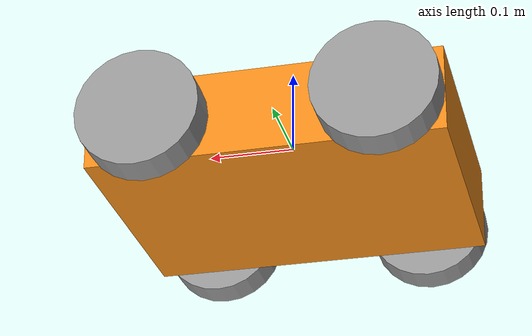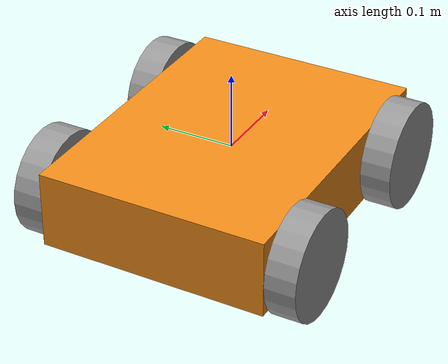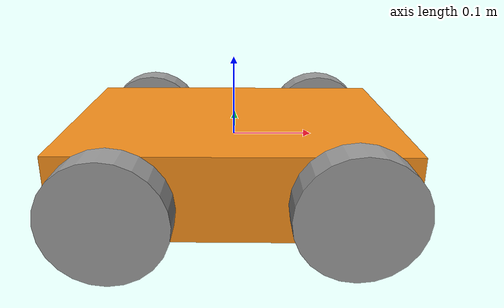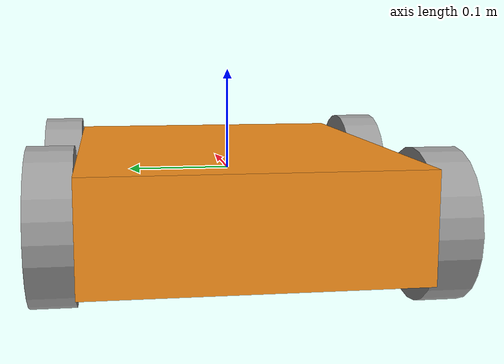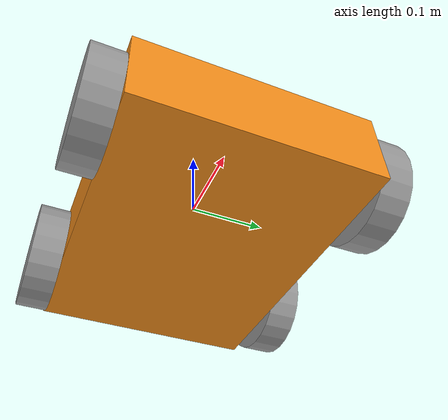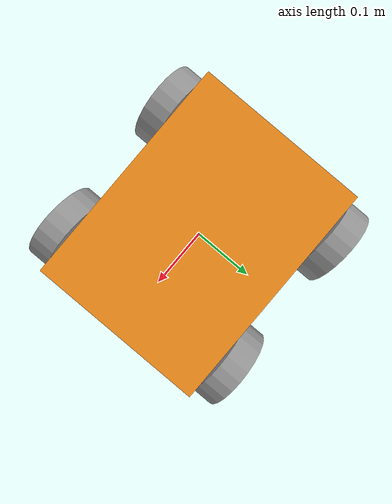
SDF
<?xml version='1.0'?>
<sdf version='1.7'>
  <model name='Robot'>
    <model name='Car'>
      <!-- Main platform -->
      <link name='main_platform'>
        <inertial>
          <mass>1</mass>
          <inertia>
            <ixx>0.166667</ixx>
            <ixy>0</ixy>
            <ixz>0</ixz>
            <iyy>0.166667</iyy>
            <iyz>0</iyz>
            <izz>0.166667</izz>
          </inertia>
          <pose>0 0 0 0 -0 0</pose>
        </inertial>
        <pose>0 0 -0.02597 0 -0 0</pose>
        <gravity>1</gravity>
        <self_collide>0</self_collide>
        <kinematic>0</kinematic>
        <enable_wind>0</enable_wind>
        <visual name='visual'>
          <pose>0 0 0 0 -0 0</pose>
          <geometry>
            <box>
              <size>0.4 0.3 0.1</size>
            </box>
          </geometry>
          <material>
            <lighting>1</lighting>
            <script>
              <uri>file://media/materials/scripts/gazebo.material</uri>
              <name>Gazebo/Orange</name>
            </script>
            <shader type='pixel'>
              <normal_map>__default__</normal_map>
            </shader>
            <!-- First 3 numbers are: red/gree/blue -->
            <ambient>0.3 0.3 0.3 1</ambient>
            <diffuse>1 0.6 0.7 1</diffuse>
            <specular>1 0.6 0.01 1</specular>
            <emissive>1 0.4 0 1</emissive>
          </material>
          <transparency>0</transparency>
          <cast_shadows>1</cast_shadows>
        </visual>
        <collision name='collision'>
          <laser_retro>0</laser_retro>
          <max_contacts>10</max_contacts>
          <pose>0 0 0 0 -0 0</pose>
          <geometry>
            <box>
              <size>0.4 0.3 0.1</size>
            </box>
          </geometry>
          <surface>
            <friction>
              <ode>
                <mu>1</mu>
                <mu2>1</mu2>
                <fdir1>0 0 0</fdir1>
                <slip1>0</slip1>
                <slip2>0</slip2>
              </ode>
              <torsional>
                <coefficient>1</coefficient>
                <patch_radius>0</patch_radius>
                <surface_radius>0</surface_radius>
                <use_patch_radius>1</use_patch_radius>
                <ode>
                  <slip>0</slip>
                </ode>
              </torsional>
            </friction>
            <bounce>
              <restitution_coefficient>0</restitution_coefficient>
              <threshold>1e+06</threshold>
            </bounce>
            <contact>
              <collide_without_contact>0</collide_without_contact>
              <collide_without_contact_bitmask>1</collide_without_contact_bitmask>
              <collide_bitmask>1</collide_bitmask>
              <ode>
                <soft_cfm>0</soft_cfm>
                <soft_erp>0.2</soft_erp>
                <kp>1e+13</kp>
                <kd>1</kd>
                <max_vel>0.01</max_vel>
                <min_depth>0</min_depth>
              </ode>
              <bullet>
                <split_impulse>1</split_impulse>
                <split_impulse_penetration_threshold>-0.01</split_impulse_penetration_threshold>
                <soft_cfm>0</soft_cfm>
                <soft_erp>0.2</soft_erp>
                <kp>1e+13</kp>
                <kd>1</kd>
              </bullet>
            </contact>
          </surface>
        </collision>
      </link>

      <!-- Wheels -->
      <link name='wheel_1'>
        <inertial>
          <mass>1</mass>
          <inertia>
            <ixx>0.145833</ixx>
            <ixy>0</ixy>
            <ixz>0</ixz>
            <iyy>0.145833</iyy>
            <iyz>0</iyz>
            <izz>0.125</izz>
          </inertia>
          <pose>0 0 0 0 -0 0</pose>
        </inertial>
        <pose>-0.13 -0.170007 -0.03597 0 -0 0</pose>
        <gravity>1</gravity>
        <self_collide>0</self_collide>
        <kinematic>0</kinematic>
        <enable_wind>0</enable_wind>
        <visual name='visual'>
          <pose>0 0 0 1.5707 -0 0</pose>
          <geometry>
            <cylinder>
              <radius>0.07</radius>
              <length>0.04</length>
            </cylinder>
          </geometry>
          <material>
            <lighting>1</lighting>
            <script>
              <uri>file://media/materials/scripts/gazebo.material</uri>
              <name>Gazebo/Grey</name>
            </script>
            <shader type='pixel'>
              <normal_map>__default__</normal_map>
            </shader>
            <ambient>0.3 0.3 0.3 1</ambient>
            <diffuse>0.7 0.7 0.7 1</diffuse>
            <specular>0.01 0.01 0.01 1</specular>
            <emissive>0 0 0 1</emissive>
          </material>
          <transparency>0</transparency>
          <cast_shadows>1</cast_shadows>
        </visual>
        <collision name='collision'>
          <laser_retro>0</laser_retro>
          <max_contacts>10</max_contacts>
          <pose>0 0 0 1.5707 -0 0</pose>
          <geometry>
            <cylinder>
              <radius>0.07</radius>
              <length>0.04</length>
            </cylinder>
          </geometry>
          <surface>
            <friction>
              <ode>
                <mu>1</mu>
                <mu2>1</mu2>
                <fdir1>0 0 0</fdir1>
                <slip1>0</slip1>
                <slip2>0</slip2>
              </ode>
              <torsional>
                <coefficient>1</coefficient>
                <patch_radius>0</patch_radius>
                <surface_radius>0</surface_radius>
                <use_patch_radius>1</use_patch_radius>
                <ode>
                  <slip>0</slip>
                </ode>
              </torsional>
            </friction>
            <bounce>
              <restitution_coefficient>0</restitution_coefficient>
              <threshold>1e+06</threshold>
            </bounce>
            <contact>
              <collide_without_contact>0</collide_without_contact>
              <collide_without_contact_bitmask>1</collide_without_contact_bitmask>
              <collide_bitmask>1</collide_bitmask>
              <ode>
                <soft_cfm>0</soft_cfm>
                <soft_erp>0.2</soft_erp>
                <kp>1e+13</kp>
                <kd>1</kd>
                <max_vel>0.01</max_vel>
                <min_depth>0</min_depth>
              </ode>
              <bullet>
                <split_impulse>1</split_impulse>
                <split_impulse_penetration_threshold>-0.01</split_impulse_penetration_threshold>
                <soft_cfm>0</soft_cfm>
                <soft_erp>0.2</soft_erp>
                <kp>1e+13</kp>
                <kd>1</kd>
              </bullet>
            </contact>
          </surface>
        </collision>
      </link>
      <link name='wheel_2'>
        <inertial>
          <mass>1</mass>
          <inertia>
            <ixx>0.145833</ixx>
            <ixy>0</ixy>
            <ixz>0</ixz>
            <iyy>0.145833</iyy>
            <iyz>0</iyz>
            <izz>0.125</izz>
          </inertia>
          <pose>0 0 -0.05 0 -0 0</pose>
        </inertial>
        <pose>-0.13 0.170007 0.020646 0 -0 0</pose>
        <gravity>1</gravity>
        <self_collide>0</self_collide>
        <kinematic>0</kinematic>
        <enable_wind>0</enable_wind>
        <visual name='visual'>
          <pose>0 0 -0.05 1.5707 -0 0</pose>
          <geometry>
            <cylinder>
              <radius>0.07</radius>
              <length>0.04</length>
            </cylinder>
          </geometry>
          <material>
            <lighting>1</lighting>
            <script>
              <uri>file://media/materials/scripts/gazebo.material</uri>
              <name>Gazebo/Grey</name>
            </script>
            <shader type='pixel'>
              <normal_map>__default__</normal_map>
            </shader>
            <ambient>0.3 0.3 0.3 1</ambient>
            <diffuse>0.7 0.7 0.7 1</diffuse>
            <specular>0.01 0.01 0.01 1</specular>
            <emissive>0 0 0 1</emissive>
          </material>
          <transparency>0</transparency>
          <cast_shadows>1</cast_shadows>
        </visual>
        <collision name='collision'>
          <laser_retro>0</laser_retro>
          <max_contacts>10</max_contacts>
          <pose>0 0 -0.05 1.5707 -0 0</pose>
          <geometry>
            <cylinder>
              <radius>0.07</radius>
              <length>0.04</length>
            </cylinder>
          </geometry>
          <surface>
            <friction>
              <ode>
                <mu>1</mu>
                <mu2>1</mu2>
                <fdir1>0 0 0</fdir1>
                <slip1>0</slip1>
                <slip2>0</slip2>
              </ode>
              <torsional>
                <coefficient>1</coefficient>
                <patch_radius>0</patch_radius>
                <surface_radius>0</surface_radius>
                <use_patch_radius>1</use_patch_radius>
                <ode>
                  <slip>0</slip>
                </ode>
              </torsional>
            </friction>
            <bounce>
              <restitution_coefficient>0</restitution_coefficient>
              <threshold>1e+06</threshold>
            </bounce>
            <contact>
              <collide_without_contact>0</collide_without_contact>
              <collide_without_contact_bitmask>1</collide_without_contact_bitmask>
              <collide_bitmask>1</collide_bitmask>
              <ode>
                <soft_cfm>0</soft_cfm>
                <soft_erp>0.2</soft_erp>
                <kp>1e+13</kp>
                <kd>1</kd>
                <max_vel>0.01</max_vel>
                <min_depth>0</min_depth>
              </ode>
              <bullet>
                <split_impulse>1</split_impulse>
                <split_impulse_penetration_threshold>-0.01</split_impulse_penetration_threshold>
                <soft_cfm>0</soft_cfm>
                <soft_erp>0.2</soft_erp>
                <kp>1e+13</kp>
                <kd>1</kd>
              </bullet>
            </contact>
          </surface>
        </collision>
      </link>
      <link name='wheel_3'>
        <inertial>
          <mass>1</mass>
          <inertia>
            <ixx>0.145833</ixx>
            <ixy>0</ixy>
            <ixz>0</ixz>
            <iyy>0.145833</iyy>
            <iyz>0</iyz>
            <izz>0.125</izz>
          </inertia>
          <pose>0 0 -0.05 0 -0 0</pose>
        </inertial>
        <pose>0.13 0.170007 0.020646 0 -0 0</pose>
        <gravity>1</gravity>
        <self_collide>0</self_collide>
        <kinematic>0</kinematic>
        <enable_wind>0</enable_wind>
        <visual name='visual'>
          <pose>0 0 -0.05 1.5707 -0 0</pose>
          <geometry>
            <cylinder>
              <radius>0.07</radius>
              <length>0.04</length>
            </cylinder>
          </geometry>
          <material>
            <lighting>1</lighting>
            <script>
              <uri>file://media/materials/scripts/gazebo.material</uri>
              <name>Gazebo/Grey</name>
            </script>
            <shader type='pixel'>
              <normal_map>__default__</normal_map>
            </shader>
            <ambient>0.3 0.3 0.3 1</ambient>
            <diffuse>0.7 0.7 0.7 1</diffuse>
            <specular>0.01 0.01 0.01 1</specular>
            <emissive>0 0 0 1</emissive>
          </material>
          <transparency>0</transparency>
          <cast_shadows>1</cast_shadows>
        </visual>
        <collision name='collision'>
          <laser_retro>0</laser_retro>
          <max_contacts>10</max_contacts>
          <pose>0 0 -0.05 1.5707 -0 0</pose>
          <geometry>
            <cylinder>
              <radius>0.07</radius>
              <length>0.04</length>
            </cylinder>
          </geometry>
          <surface>
            <friction>
              <ode>
                <mu>1</mu>
                <mu2>1</mu2>
                <fdir1>0 0 0</fdir1>
                <slip1>0</slip1>
                <slip2>0</slip2>
              </ode>
              <torsional>
                <coefficient>1</coefficient>
                <patch_radius>0</patch_radius>
                <surface_radius>0</surface_radius>
                <use_patch_radius>1</use_patch_radius>
                <ode>
                  <slip>0</slip>
                </ode>
              </torsional>
            </friction>
            <bounce>
              <restitution_coefficient>0</restitution_coefficient>
              <threshold>1e+06</threshold>
            </bounce>
            <contact>
              <collide_without_contact>0</collide_without_contact>
              <collide_without_contact_bitmask>1</collide_without_contact_bitmask>
              <collide_bitmask>1</collide_bitmask>
              <ode>
                <soft_cfm>0</soft_cfm>
                <soft_erp>0.2</soft_erp>
                <kp>1e+13</kp>
                <kd>1</kd>
                <max_vel>0.01</max_vel>
                <min_depth>0</min_depth>
              </ode>
              <bullet>
                <split_impulse>1</split_impulse>
                <split_impulse_penetration_threshold>-0.01</split_impulse_penetration_threshold>
                <soft_cfm>0</soft_cfm>
                <soft_erp>0.2</soft_erp>
                <kp>1e+13</kp>
                <kd>1</kd>
              </bullet>
            </contact>
          </surface>
        </collision>
      </link>
      <link name='wheel_4'>
        <inertial>
          <mass>1</mass>
          <inertia>
            <ixx>0.145833</ixx>
            <ixy>0</ixy>
            <ixz>0</ixz>
            <iyy>0.145833</iyy>
            <iyz>0</iyz>
            <izz>0.125</izz>
          </inertia>
          <pose>0 0 -0.05 0 -0 0</pose>
        </inertial>
        <pose>0.13 -0.170007 0.020646 0 -0 0</pose>
        <gravity>1</gravity>
        <self_collide>0</self_collide>
        <kinematic>0</kinematic>
        <enable_wind>0</enable_wind>
        <visual name='visual'>
          <pose>0 0 -0.05 1.5707 -0 0</pose>
          <geometry>
            <cylinder>
              <radius>0.07</radius>
              <length>0.04</length>
            </cylinder>
          </geometry>
          <material>
            <lighting>1</lighting>
            <script>
              <uri>file://media/materials/scripts/gazebo.material</uri>
              <name>Gazebo/Grey</name>
            </script>
            <shader type='pixel'>
              <normal_map>__default__</normal_map>
            </shader>
            <ambient>0.3 0.3 0.3 1</ambient>
            <diffuse>0.7 0.7 0.7 1</diffuse>
            <specular>0.01 0.01 0.01 1</specular>
            <emissive>0 0 0 1</emissive>
          </material>
          <transparency>0</transparency>
          <cast_shadows>1</cast_shadows>
        </visual>
        <collision name='collision'>
          <laser_retro>0</laser_retro>
          <max_contacts>10</max_contacts>
          <pose>0 0 -0.05 1.5707 -0 0</pose>
          <geometry>
            <cylinder>
              <radius>0.07</radius>
              <length>0.04</length>
            </cylinder>
          </geometry>
          <surface>
            <friction>
              <ode>
                <mu>1</mu>
                <mu2>1</mu2>
                <fdir1>0 0 0</fdir1>
                <slip1>0</slip1>
                <slip2>0</slip2>
              </ode>
              <torsional>
                <coefficient>1</coefficient>
                <patch_radius>0</patch_radius>
                <surface_radius>0</surface_radius>
                <use_patch_radius>1</use_patch_radius>
                <ode>
                  <slip>0</slip>
                </ode>
              </torsional>
            </friction>
            <bounce>
              <restitution_coefficient>0</restitution_coefficient>
              <threshold>1e+06</threshold>
            </bounce>
            <contact>
              <collide_without_contact>0</collide_without_contact>
              <collide_without_contact_bitmask>1</collide_without_contact_bitmask>
              <collide_bitmask>1</collide_bitmask>
              <ode>
                <soft_cfm>0</soft_cfm>
                <soft_erp>0.2</soft_erp>
                <kp>1e+13</kp>
                <kd>1</kd>
                <max_vel>0.01</max_vel>
                <min_depth>0</min_depth>
              </ode>
              <bullet>
                <split_impulse>1</split_impulse>
                <split_impulse_penetration_threshold>-0.01</split_impulse_penetration_threshold>
                <soft_cfm>0</soft_cfm>
                <soft_erp>0.2</soft_erp>
                <kp>1e+13</kp>
                <kd>1</kd>
              </bullet>
            </contact>
          </surface>
        </collision>
      </link>
      <!-- Joints -->
      <joint name='wheel_1_JOINT' type='revolute'>
        <parent>main_platform</parent>
        <child>wheel_1</child>
        <pose>0 0 0 0 -0 0</pose>
        <axis>
          <xyz>0 0 1</xyz>
          <limit>
            <lower>-1.79769e+308</lower>
            <upper>1.79769e+308</upper>
            <effort>-1</effort>
            <velocity>-1</velocity>
          </limit>
          <dynamics>
            <spring_reference>0</spring_reference>
            <spring_stiffness>0</spring_stiffness>
            <damping>0</damping>
          </dynamics>
        </axis>
        <physics>
          <ode>
            <limit>
              <cfm>0</cfm>
              <erp>0.2</erp>
            </limit>
            <suspension>
              <cfm>0</cfm>
              <erp>0.2</erp>
            </suspension>
          </ode>
        </physics>
      </joint>
      <joint name='wheel_2_JOINT' type='revolute'>
        <parent>main_platform</parent>
        <child>wheel_2</child>
        <pose>0 0 0 0 -0 0</pose>
        <axis>
          <xyz>0 0 1</xyz>
          <limit>
            <lower>-1.79769e+308</lower>
            <upper>1.79769e+308</upper>
            <effort>-1</effort>
            <velocity>-1</velocity>
          </limit>
          <dynamics>
            <spring_reference>0</spring_reference>
            <spring_stiffness>0</spring_stiffness>
            <damping>0</damping>
          </dynamics>
        </axis>
        <physics>
          <ode>
            <limit>
              <cfm>0</cfm>
              <erp>0.2</erp>
            </limit>
            <suspension>
              <cfm>0</cfm>
              <erp>0.2</erp>
            </suspension>
          </ode>
        </physics>
      </joint>
      <joint name='wheel_3_JOINT' type='revolute'>
        <parent>main_platform</parent>
        <child>wheel_3</child>
        <pose>0 0 0 0 -0 0</pose>
        <axis>
          <xyz>0 0 1</xyz>
          <limit>
            <lower>-1.79769e+308</lower>
            <upper>1.79769e+308</upper>
            <effort>-1</effort>
            <velocity>-1</velocity>
          </limit>
          <dynamics>
            <spring_reference>0</spring_reference>
            <spring_stiffness>0</spring_stiffness>
            <damping>0</damping>
          </dynamics>
        </axis>
        <physics>
          <ode>
            <limit>
              <cfm>0</cfm>
              <erp>0.2</erp>
            </limit>
            <suspension>
              <cfm>0</cfm>
              <erp>0.2</erp>
            </suspension>
          </ode>
        </physics>
      </joint>
      <joint name='wheel_4_JOINT' type='revolute'>
        <parent>main_platform</parent>
        <child>wheel_4</child>
        <pose>0 0 0 0 -0 0</pose>
        <axis>
          <xyz>0 0 1</xyz>
          <limit>
            <lower>-1.79769e+308</lower>
            <upper>1.79769e+308</upper>
            <effort>-1</effort>
            <velocity>-1</velocity>
          </limit>
          <dynamics>
            <spring_reference>0</spring_reference>
            <spring_stiffness>0</spring_stiffness>
            <damping>0</damping>
          </dynamics>
        </axis>
        <physics>
          <ode>
            <limit>
              <cfm>0</cfm>
              <erp>0.2</erp>
            </limit>
            <suspension>
              <cfm>0</cfm>
              <erp>0.2</erp>
            </suspension>
          </ode>
        </physics>
      </joint>
      <static>0</static>
      <allow_auto_disable>1</allow_auto_disable>
      <pose>0 -0 0 0 -0 0</pose>
    </model>
    <static>0</static>
    <allow_auto_disable>1</allow_auto_disable>
  </model>
</sdf>
